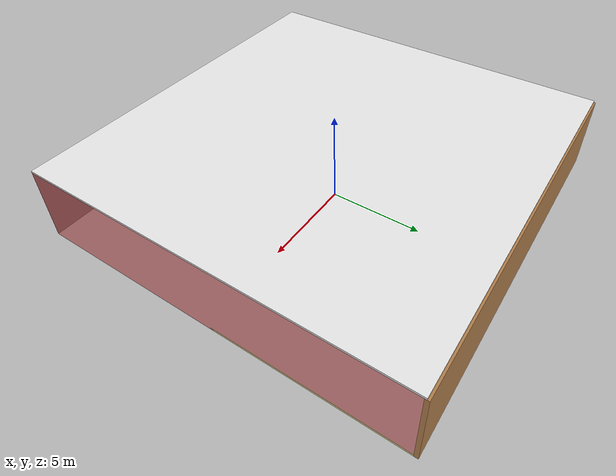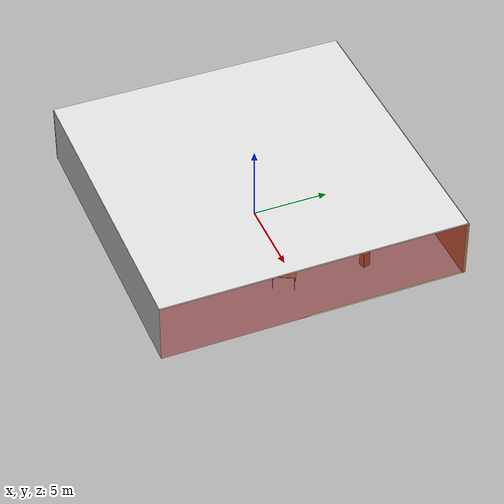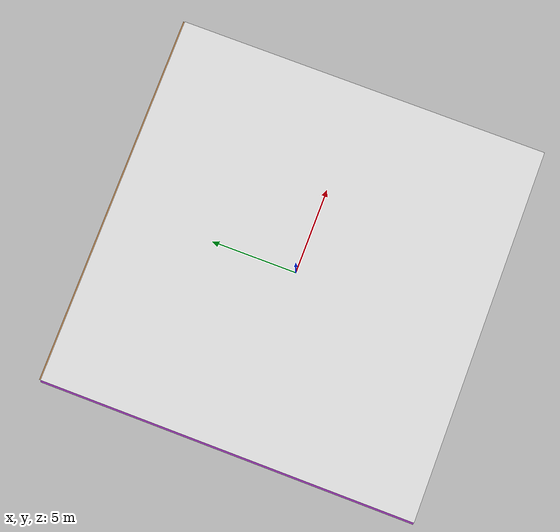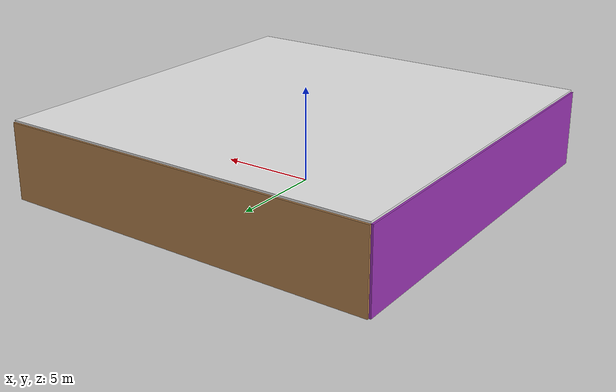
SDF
<sdf version="1.4">
 <world name="default">
  <physics type="ode">
   <max_step_size>0.001</max_step_size>
   <real_time_factor>1</real_time_factor>
   <real_time_update_rate>1000</real_time_update_rate>
   <gravity>0 0 -9.8</gravity>
  </physics>
  <scene><ambient>0.4 0.4 0.4 1</ambient><background>0.7 0.7 0.7 1</background><shadows>1</shadows></scene>
  <model name="Surrounding">
   <static>1</static>
   <link name="Ceiling">
    <collision name="Ceiling_Collision"><geometry><box><size>20 20 0.1</size></box></geometry></collision>
    <visual name="Ceiling_Visual">
     <geometry><box><size>20 20 0.1</size></box></geometry>
     <material>
      <script><uri>file://media/materials/scripts/gazebo.material</uri><name>Gazebo/WhiteGlow</name></script>
     </material>
    </visual>
    <pose>0 0 4.05 0 0 0</pose>
   </link>
   <link name="Wall_South">
    <collision name="Wall_South_Collision">
     <geometry><box><size>20 0 4</size></box></geometry>
     <pose>0 0 2 0 -0 0</pose>
    </collision>
    <visual name="Wall_South_Visual">
     <pose>0 0 2 0 -0 0</pose>
     <geometry><box><size>20 0 4</size></box></geometry>
     <material>
      <script><uri>file://media/materials/scripts/gazebo.material</uri><name>Gazebo/GreyGradientSky</name></script>
     </material>
    </visual>
    <velocity_decay><linear>0</linear><angular>0</angular></velocity_decay>
    <pose>0 -10 0 0 -0 0</pose>
   </link>
   <link name="Wall_East">
    <collision name="Wall_21_Collision">
     <geometry><box><size>20 0 4</size></box></geometry>
     <pose>0 0 2 0 -0 0</pose>
    </collision>
    <visual name="Wall_21_Visual">
     <pose>0 0 2 0 -0 0</pose>
     <geometry><box><size>20 0 4</size></box></geometry>
     <material>
      <script><uri>file://media/materials/scripts/gazebo.material</uri><name>Gazebo/RedTransparent</name></script>
     </material>
    </visual>
    <velocity_decay><linear>0</linear><angular>0</angular></velocity_decay>
    <pose>10 0 0 0 -0 1.5708</pose>
   </link>
   <link name="Wall_North">
    <collision name="Wall_22_Collision">
     <geometry><box><size>20 0.2 4</size></box></geometry>
     <pose>0 0 2 0 -0 0</pose>
    </collision>
    <visual name="Wall_22_Visual">
     <pose>0 0 2 0 -0 0</pose>
     <geometry><box><size>20 0.2 4</size></box></geometry>
     <material>
      <script><uri>file://media/materials/scripts/gazebo.material</uri><name>Gazebo/WoodPallet</name></script>
     </material>
    </visual>
    <velocity_decay><linear>0</linear><angular>0</angular></velocity_decay>
    <pose>0 10 0 0 -0 0</pose>
   </link>
   <link name="Wall_West">
    <collision name="Wall_23_Collision">
     <geometry><box><size>20 0.2 4</size></box></geometry>
     <pose>0 0 2 0 -0 0</pose>
    </collision>
    <visual name="Wall_23_Visual">
     <pose>0 0 2 0 -0 0</pose>
     <geometry><box><size>20 0.2 4</size></box></geometry>
     <material>
      <script><uri>file://media/materials/scripts/gazebo.material</uri><name>Gazebo/Purple</name></script>
     </material>
    </visual>
    <velocity_decay><linear>0</linear><angular>0</angular></velocity_decay>
    <pose>-10 0 0 0 0 -1.5708</pose>
   </link>
   <link name="Ground_link">
    <collision name="collision">
     <pose>0 0 .05 0 -0 0</pose>
     <geometry><box><size>20 20 0.1</size></box></geometry>
    </collision>
    <visual name="visual">
     <pose>0 0 .05 0 -0 0</pose>
     <geometry><box><size>20 20 0.1</size></box></geometry>
     <material>
      <script>
       <uri>file://media/materials/scripts/gazebo.material</uri>
       <name>Gazebo/YellowTransparent</name>
      </script>
     </material>
    </visual>
   </link>
   <static>1</static>
  </model>
  <spherical_coordinates>
   <surface_model>EARTH_WGS84</surface_model>
   <latitude_deg>0</latitude_deg>
   <longitude_deg>0</longitude_deg>
   <elevation>0</elevation>
   <heading_deg>0</heading_deg>
  </spherical_coordinates>
  <light name="lightball_0" type="diffuse">
   <diffuse>0.8 0.8 0.8 1</diffuse>
   <specular>0.2 0.2 0.2 1</specular>
   <attenuation>
    <range>100</range>
    <constant>0.7</constant>
    <linear>0.01</linear>
    <quadratic>0.001</quadratic>
   </attenuation>
   <direction>-0.5 0.1 -0.9</direction>
   <pose>2.08275490386 -3.29460780821 2.36737126071 0 0 0</pose>
  </light>
  <light name="lightball_1" type="diffuse">
   <diffuse>0.8 0.8 0.8 1</diffuse>
   <specular>0.2 0.2 0.2 1</specular>
   <attenuation>
    <range>100</range>
    <constant>0.7</constant>
    <linear>0.01</linear>
    <quadratic>0.001</quadratic>
   </attenuation>
   <direction>-0.5 0.1 -0.9</direction>
   <pose>5.90787818815 -3.61099204991 3.06700878972 0 0 0</pose>
  </light>
  <light name="lightball_2" type="diffuse">
   <diffuse>0.8 0.8 0.8 1</diffuse>
   <specular>0.2 0.2 0.2 1</specular>
   <attenuation>
    <range>100</range>
    <constant>0.7</constant>
    <linear>0.01</linear>
    <quadratic>0.001</quadratic>
   </attenuation>
   <direction>-0.5 0.1 -0.9</direction>
   <pose>-1.46632852152 3.5382964433 1.68805309642 0 0 0</pose>
  </light>
  <light name="lightball_3" type="diffuse">
   <diffuse>0.8 0.8 0.8 1</diffuse>
   <specular>0.2 0.2 0.2 1</specular>
   <attenuation>
    <range>100</range>
    <constant>0.7</constant>
    <linear>0.01</linear>
    <quadratic>0.001</quadratic>
   </attenuation>
   <direction>-0.5 0.1 -0.9</direction>
   <pose>2.71477983438 7.34421211151 1.96231128152 0 0 0</pose>
  </light>
  <light name="lightball_4" type="diffuse">
   <diffuse>0.8 0.8 0.8 1</diffuse>
   <specular>0.2 0.2 0.2 1</specular>
   <attenuation>
    <range>100</range>
    <constant>0.7</constant>
    <linear>0.01</linear>
    <quadratic>0.001</quadratic>
   </attenuation>
   <direction>-0.5 0.1 -0.9</direction>
   <pose>9.17685298153 5.89360768416 1.43282220503 0 0 0</pose>
  </light>
  <light name="lightball_5" type="diffuse">
   <diffuse>0.8 0.8 0.8 1</diffuse>
   <specular>0.2 0.2 0.2 1</specular>
   <attenuation>
    <range>100</range>
    <constant>0.7</constant>
    <linear>0.01</linear>
    <quadratic>0.001</quadratic>
   </attenuation>
   <direction>-0.5 0.1 -0.9</direction>
   <pose>6.8606247199 1.77745618862 0.779886133426 0 0 0</pose>
  </light>
  <light name="lightball_6" type="diffuse">
   <diffuse>0.8 0.8 0.8 1</diffuse>
   <specular>0.2 0.2 0.2 1</specular>
   <attenuation>
    <range>100</range>
    <constant>0.7</constant>
    <linear>0.01</linear>
    <quadratic>0.001</quadratic>
   </attenuation>
   <direction>-0.5 0.1 -0.9</direction>
   <pose>4.68549960332 5.6388108002 1.89585976439 0 0 0</pose>
  </light>
  <light name="lightball_7" type="diffuse">
   <diffuse>0.8 0.8 0.8 1</diffuse>
   <specular>0.2 0.2 0.2 1</specular>
   <attenuation>
    <range>100</range>
    <constant>0.7</constant>
    <linear>0.01</linear>
    <quadratic>0.001</quadratic>
   </attenuation>
   <direction>-0.5 0.1 -0.9</direction>
   <pose>-7.77263579672 6.66809762609 2.41378427495 0 0 0</pose>
  </light>
  <light name="lightball_8" type="diffuse">
   <diffuse>0.8 0.8 0.8 1</diffuse>
   <specular>0.2 0.2 0.2 1</specular>
   <attenuation>
    <range>100</range>
    <constant>0.7</constant>
    <linear>0.01</linear>
    <quadratic>0.001</quadratic>
   </attenuation>
   <direction>-0.5 0.1 -0.9</direction>
   <pose>6.81749248219 6.21987142885 1.59086794523 0 0 0</pose>
  </light>
  <include><uri>model://table</uri><pose>-4.08028530638 -4.59572892874 0 0 0 0.453027640035</pose></include>
  <include><uri>model://cabinet</uri><pose>-0.74163523349 -7.5911509562 0 0 0 0.597394476459</pose></include>
  <include><uri>model://cabinet</uri><pose>-2.20762314989 7.90938330133 0 0 0 2.75056967729</pose></include>
  <include><uri>model://table</uri><pose>6.85522774557 -0.801844721379 0 0 0 1.10261987522</pose></include>
  <include><uri>model://cabinet</uri><pose>7.00302334939 4.58812998653 0 0 0 0.207863339801</pose></include>
 </world>
</sdf>

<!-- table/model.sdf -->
<sdf version="1.5">
  <model name="table">
    <static>true</static>
    <link name="link">
      <collision name="surface">
        <pose>0 0 1.0 0 0 0</pose>
        <geometry>
          <box>
            <size>1.5 0.8 0.03</size>
          </box>
        </geometry>
        <surface>
          <friction>
            <ode>
              <mu>0.6</mu>
              <mu2>0.6</mu2>
            </ode>
          </friction>
        </surface>
      </collision>
      <visual name="visual1">
        <pose>0 0 1.0 0 0 0</pose>
        <geometry>
          <box>
            <size>1.5 0.8 0.03</size>
          </box>
        </geometry>
        <material>
          <script>
            <uri>model://media/materials/scripts/gazebo.material</uri>
            <name>Gazebo/Wood</name>
          </script>
        </material>
      </visual>
      <collision name="front_left_leg">
        <pose>0.68 0.38 0.5 0 0 0</pose>
        <geometry>
          <cylinder>
            <radius>0.02</radius>
            <length>1.0</length>
          </cylinder>
        </geometry>
      </collision>
      <visual name="front_left_leg">
        <pose>0.68 0.38 0.5 0 0 0</pose>
        <geometry>
          <cylinder>
            <radius>0.02</radius>
            <length>1.0</length>
          </cylinder>
        </geometry>
        <material>
          <script>
            <uri>model://media/materials/scripts/gazebo.material</uri>
            <name>Gazebo/Grey</name>
          </script>
        </material>
      </visual>
      <collision name="front_right_leg">
        <pose>0.68 -0.38 0.5 0 0 0</pose>
        <geometry>
          <cylinder>
            <radius>0.02</radius>
            <length>1.0</length>
          </cylinder>
        </geometry>
      </collision>
      <visual name="front_right_leg">
        <pose>0.68 -0.38 0.5 0 0 0</pose>
        <geometry>
          <cylinder>
            <radius>0.02</radius>
            <length>1.0</length>
          </cylinder>
        </geometry>
        <material>
          <script>
            <uri>model://media/materials/scripts/gazebo.material</uri>
            <name>Gazebo/Grey</name>
          </script>
        </material>
      </visual>
      <collision name="back_right_leg">
        <pose>-0.68 -0.38 0.5 0 0 0</pose>
        <geometry>
          <cylinder>
            <radius>0.02</radius>
            <length>1.0</length>
          </cylinder>
        </geometry>
      </collision>
      <visual name="back_right_leg">
        <pose>-0.68 -0.38 0.5 0 0 0</pose>
        <geometry>
          <cylinder>
            <radius>0.02</radius>
            <length>1.0</length>
          </cylinder>
        </geometry>
        <material>
          <script>
            <uri>model://media/materials/scripts/gazebo.material</uri>
            <name>Gazebo/Grey</name>
          </script>
        </material>
      </visual>
      <collision name="back_left_leg">
        <pose>-0.68 0.38 0.5 0 0 0</pose>
        <geometry>
          <cylinder>
            <radius>0.02</radius>
            <length>1.0</length>
          </cylinder>
        </geometry>
      </collision>
      <visual name="back_left_leg">
        <pose>-0.68 0.38 0.5 0 0 0</pose>
        <geometry>
          <cylinder>
            <radius>0.02</radius>
            <length>1.0</length>
          </cylinder>
        </geometry>
        <material>
          <script>
            <uri>model://media/materials/scripts/gazebo.material</uri>
            <name>Gazebo/Grey</name>
          </script>
        </material>
      </visual>
    </link>
  </model>
</sdf>

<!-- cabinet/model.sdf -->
<sdf version="1.5">
  <model name="cabinet">
    <static>true</static>
    <link name="cabinet_bottom_plate">
      <inertial>
        <pose>0 0 -1 0 0 0</pose>
        <inertia>
          <ixx>2.050000</ixx>
          <ixy>0</ixy>
          <ixz>0</ixz>
          <iyy>2.050000</iyy>
          <iyz>0</iyz>
          <izz>2.050000</izz>
        </inertia>
        <mass>25.000000</mass>
      </inertial>
      <collision name="cabinet_bottom_plate_geom">
        <pose>0 0 0.010000 0 0 0</pose>
        <geometry>
          <box>
            <size>0.450000 0.450000 0.020000</size>
          </box>
        </geometry>
      </collision>
      <visual name="cabinet_bottom_plate_geom_visual">
        <pose>0 0 0.010000 0 0 0</pose>
        <geometry>
          <box>
            <size>0.450000 0.450000 0.020000</size>
          </box>
        </geometry>
        <material>
          <script>
            <uri>model://media/materials/scripts/gazebo.material</uri>
            <name>Gazebo/Wood</name>
          </script>
        </material>
      </visual>
      <collision name="cabinet_bottom_plate_geom_cabinet_back_plate">
        <pose>0.235000 0 0.510000 0 0 0</pose>
        <geometry>
          <box>
            <size>0.020000 0.450000 1.020000</size>
          </box>
        </geometry>
      </collision>
      <visual name="cabinet_bottom_plate_geom_cabinet_back_plate_visual">
        <pose>0.235000 0 0.510000 0 0 0</pose>
        <geometry>
          <box>
            <size>0.020000 0.450000 1.020000</size>
          </box>
        </geometry>
        <material>
          <script>
            <uri>model://media/materials/scripts/gazebo.material</uri>
            <name>Gazebo/Wood</name>
          </script>
        </material>
      </visual>
      <collision name="cabinet_bottom_plate_geom_cabinet_left_plate">
        <pose>0 0.235000 0.510000 0 0 0</pose>
        <geometry>
          <box>
            <size>0.450000 0.020000 1.020000</size>
          </box>
        </geometry>
      </collision>
      <visual name="cabinet_bottom_plate_geom_cabinet_left_plate_visual">
        <pose>0 0.235000 0.510000 0 0 0</pose>
        <geometry>
          <box>
            <size>0.450000 0.020000 1.020000</size>
          </box>
        </geometry>
        <material>
          <script>
            <uri>model://media/materials/scripts/gazebo.material</uri>
            <name>Gazebo/Wood</name>
          </script>
        </material>
      </visual>
      <collision name="cabinet_bottom_plate_geom_cabinet_middle_plate">
        <pose>0 0 0.510000 0 0 0</pose>
        <geometry>
          <box>
            <size>0.450000 0.450000 0.020000</size>
          </box>
        </geometry>
      </collision>
      <visual name="cabinet_bottom_plate_geom_cabinet_middle_plate_visual">
        <pose>0 0 0.510000 0 0 0</pose>
        <geometry>
          <box>
            <size>0.450000 0.450000 0.020000</size>
          </box>
        </geometry>
        <material>
          <script>
            <uri>model://media/materials/scripts/gazebo.material</uri>
            <name>Gazebo/Wood</name>
          </script>
        </material>
      </visual>
      <collision name="cabinet_bottom_plate_geom_cabinet_right_plate">
        <pose>0 -0.235000 0.510000 0 0 0</pose>
        <geometry>
          <box>
            <size>0.450000 0.020000 1.020000</size>
          </box>
        </geometry>
      </collision>
      <visual name="cabinet_bottom_plate_geom_cabinet_right_plate_visual">
        <pose>0 -0.235000 0.510000 0 0 0</pose>
        <geometry>
          <box>
            <size>0.450000 0.020000 1.020000</size>
          </box>
        </geometry>
        <material>
          <script>
            <uri>model://media/materials/scripts/gazebo.material</uri>
            <name>Gazebo/Wood</name>
          </script>
        </material>
      </visual>
      <collision name="cabinet_bottom_plate_geom_cabinet_top_plate">
        <pose>0 0 1.010000 0 0 0</pose>
        <geometry>
          <box>
            <size>0.450000 0.450000 0.020000</size>
          </box>
        </geometry>
      </collision>
      <visual name="cabinet_bottom_plate_geom_cabinet_top_plate_visual">
        <pose>0 0 1.010000 0 0 0</pose>
        <geometry>
          <box>
            <size>0.450000 0.450000 0.020000</size>
          </box>
        </geometry>
        <material>
          <script>
            <uri>model://media/materials/scripts/gazebo.material</uri>
            <name>Gazebo/Wood</name>
          </script>
        </material>
      </visual>
    </link>
  </model>
</sdf>
